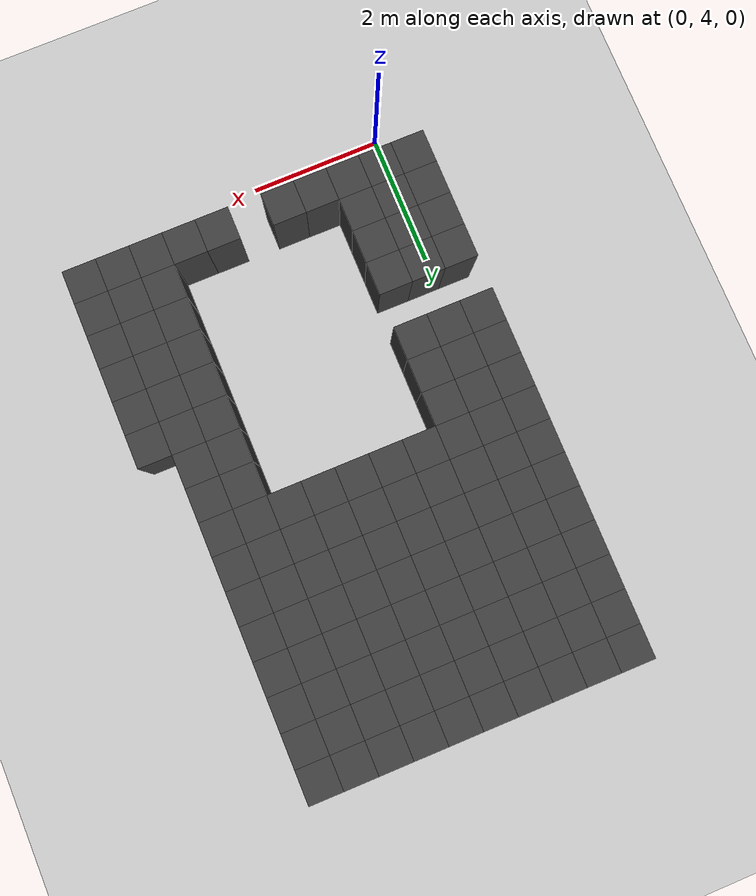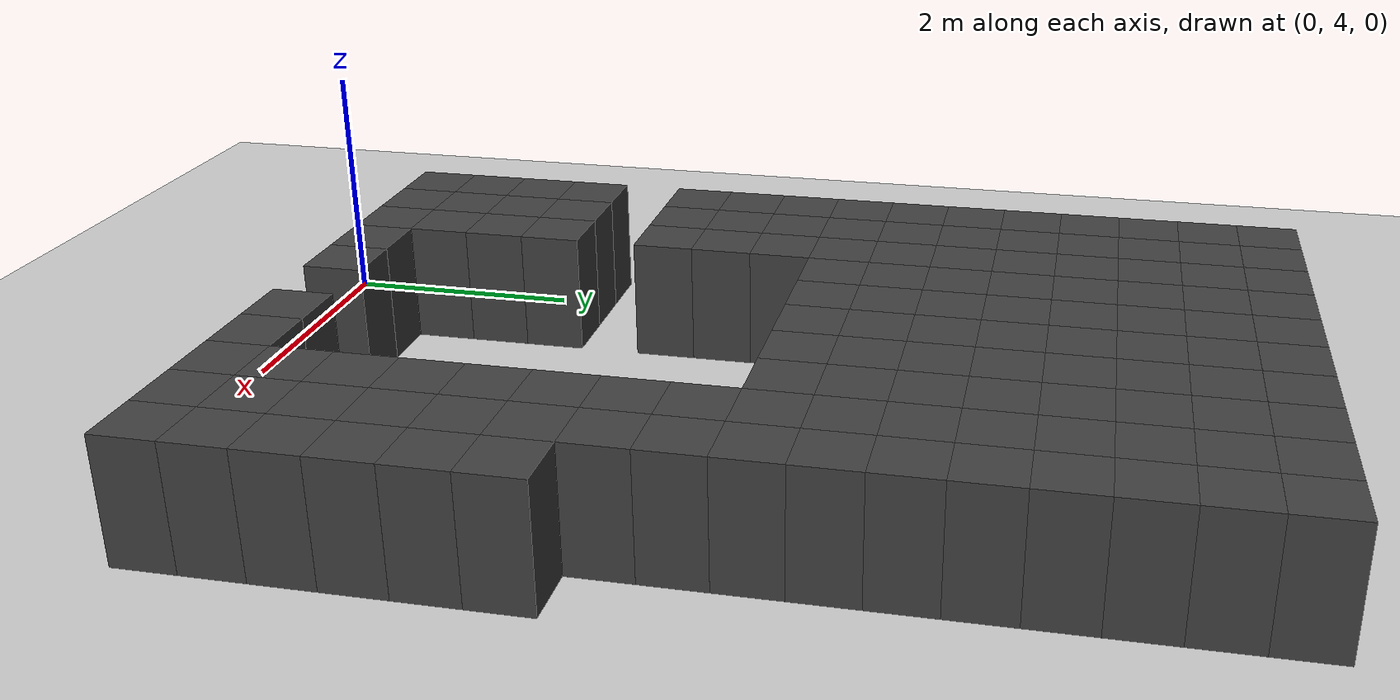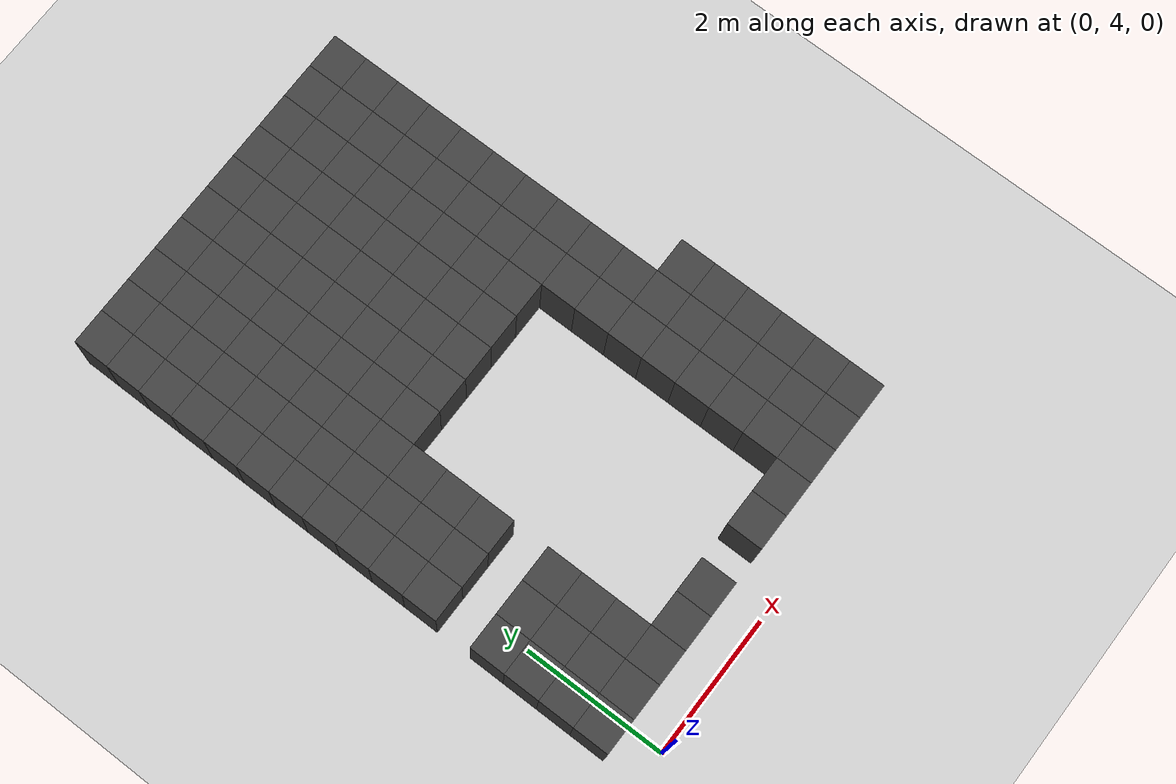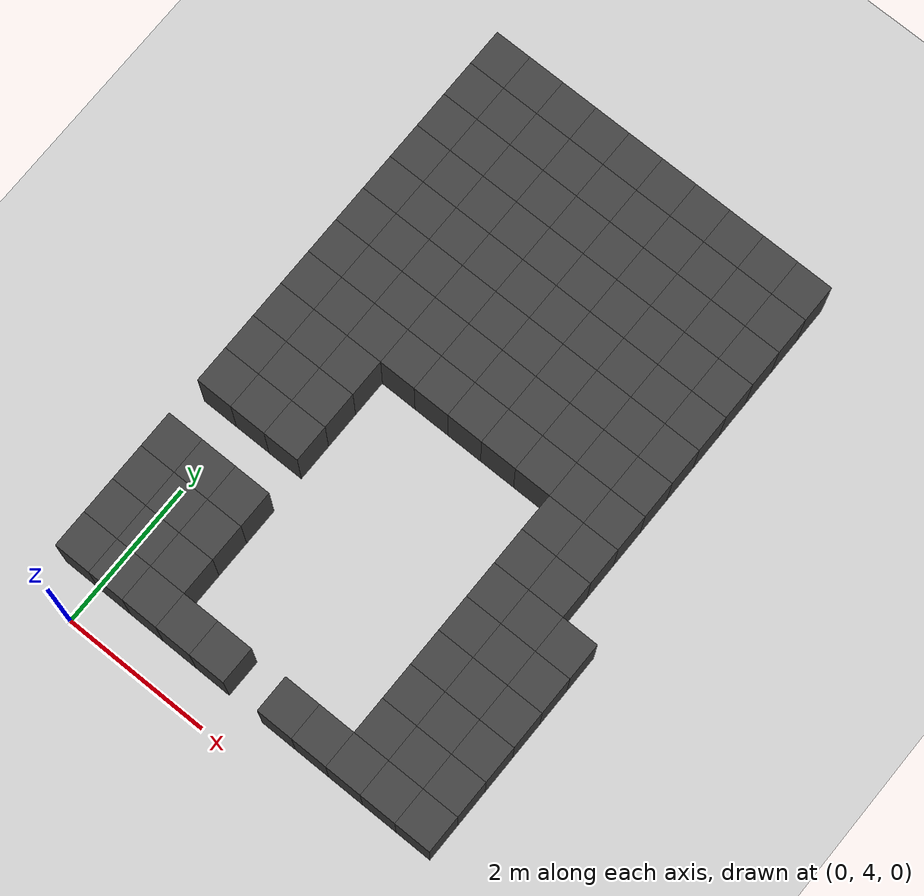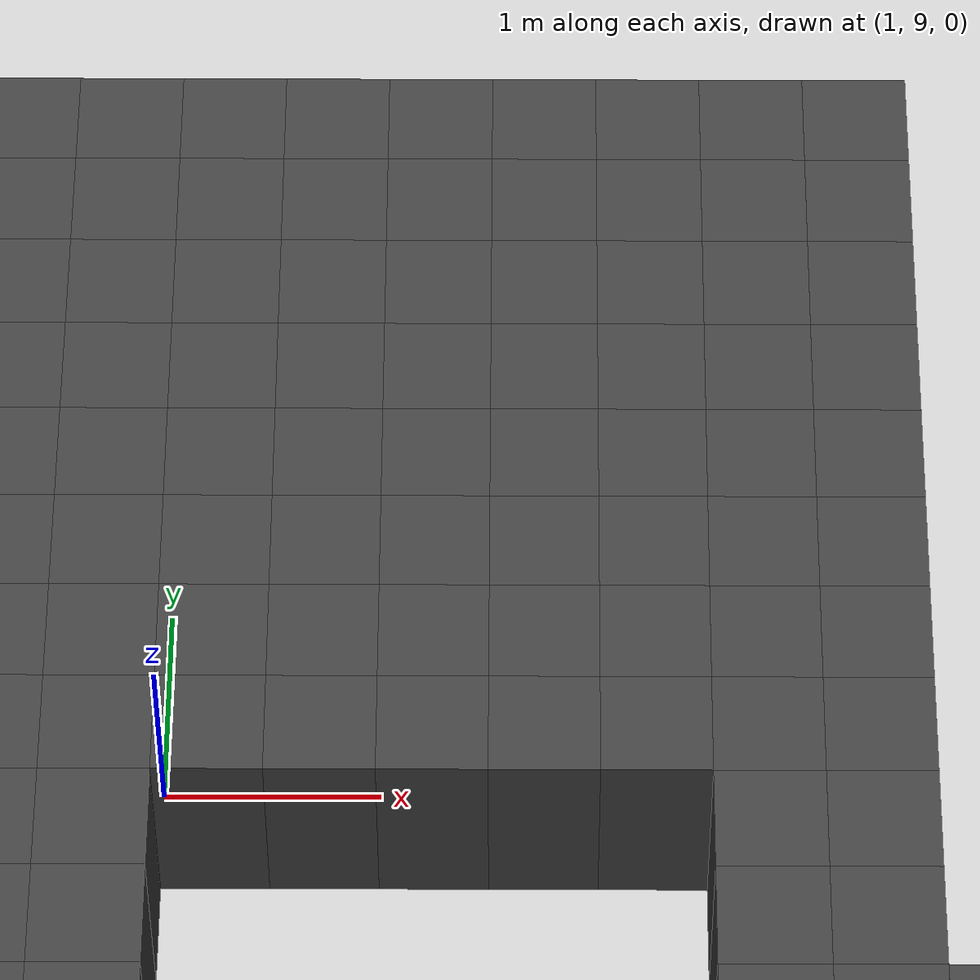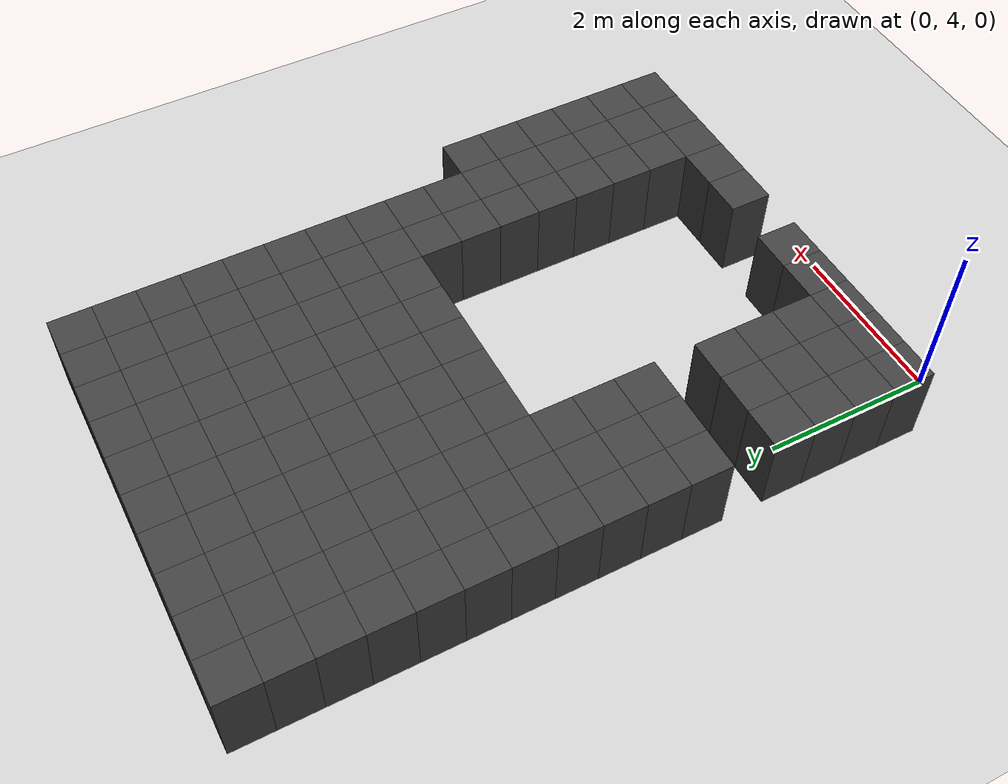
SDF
<sdf version="1.7">
 <world name="map_11672">
  <model name="ground_plane">
   <static>true</static>
   <link name="link">
    <collision name="collision">
     <geometry><plane><normal>0 0 1</normal><size>200 200</size></plane></geometry>
    </collision>
    <visual name="visual">
     <geometry><plane><normal>0 0 1</normal><size>200 200</size></plane></geometry>
     <material><ambient>0.8 0.8 0.8 1</ambient><diffuse>0.8 0.8 0.8 1</diffuse></material>
    </visual>
   </link>
  </model>
  <model name="maze_environment">
   <static>true</static>
   <link name="wall_24">
    <pose>-0.250 12.250 0.500 0 0 0</pose>
    <collision name="col"><geometry><box><size>0.5 0.5 1.0</size></box></geometry></collision>
    <visual name="vis">
     <geometry><box><size>0.5 0.5 1.0</size></box></geometry>
     <material><ambient>0.15 0.15 0.15 1</ambient><diffuse>0.25 0.25 0.25 1</diffuse></material>
    </visual>
   </link>
   <link name="wall_25">
    <pose>0.250 12.250 0.500 0 0 0</pose>
    <collision name="col"><geometry><box><size>0.5 0.5 1.0</size></box></geometry></collision>
    <visual name="vis">
     <geometry><box><size>0.5 0.5 1.0</size></box></geometry>
     <material><ambient>0.15 0.15 0.15 1</ambient><diffuse>0.25 0.25 0.25 1</diffuse></material>
    </visual>
   </link>
   <link name="wall_26">
    <pose>0.750 12.250 0.500 0 0 0</pose>
    <collision name="col"><geometry><box><size>0.5 0.5 1.0</size></box></geometry></collision>
    <visual name="vis">
     <geometry><box><size>0.5 0.5 1.0</size></box></geometry>
     <material><ambient>0.15 0.15 0.15 1</ambient><diffuse>0.25 0.25 0.25 1</diffuse></material>
    </visual>
   </link>
   <link name="wall_27">
    <pose>1.250 12.250 0.500 0 0 0</pose>
    <collision name="col"><geometry><box><size>0.5 0.5 1.0</size></box></geometry></collision>
    <visual name="vis">
     <geometry><box><size>0.5 0.5 1.0</size></box></geometry>
     <material><ambient>0.15 0.15 0.15 1</ambient><diffuse>0.25 0.25 0.25 1</diffuse></material>
    </visual>
   </link>
   <link name="wall_28">
    <pose>1.750 12.250 0.500 0 0 0</pose>
    <collision name="col"><geometry><box><size>0.5 0.5 1.0</size></box></geometry></collision>
    <visual name="vis">
     <geometry><box><size>0.5 0.5 1.0</size></box></geometry>
     <material><ambient>0.15 0.15 0.15 1</ambient><diffuse>0.25 0.25 0.25 1</diffuse></material>
    </visual>
   </link>
   <link name="wall_29">
    <pose>2.250 12.250 0.500 0 0 0</pose>
    <collision name="col"><geometry><box><size>0.5 0.5 1.0</size></box></geometry></collision>
    <visual name="vis">
     <geometry><box><size>0.5 0.5 1.0</size></box></geometry>
     <material><ambient>0.15 0.15 0.15 1</ambient><diffuse>0.25 0.25 0.25 1</diffuse></material>
    </visual>
   </link>
   <link name="wall_30">
    <pose>2.750 12.250 0.500 0 0 0</pose>
    <collision name="col"><geometry><box><size>0.5 0.5 1.0</size></box></geometry></collision>
    <visual name="vis">
     <geometry><box><size>0.5 0.5 1.0</size></box></geometry>
     <material><ambient>0.15 0.15 0.15 1</ambient><diffuse>0.25 0.25 0.25 1</diffuse></material>
    </visual>
   </link>
   <link name="wall_31">
    <pose>3.250 12.250 0.500 0 0 0</pose>
    <collision name="col"><geometry><box><size>0.5 0.5 1.0</size></box></geometry></collision>
    <visual name="vis">
     <geometry><box><size>0.5 0.5 1.0</size></box></geometry>
     <material><ambient>0.15 0.15 0.15 1</ambient><diffuse>0.25 0.25 0.25 1</diffuse></material>
    </visual>
   </link>
   <link name="wall_32">
    <pose>3.750 12.250 0.500 0 0 0</pose>
    <collision name="col"><geometry><box><size>0.5 0.5 1.0</size></box></geometry></collision>
    <visual name="vis">
     <geometry><box><size>0.5 0.5 1.0</size></box></geometry>
     <material><ambient>0.15 0.15 0.15 1</ambient><diffuse>0.25 0.25 0.25 1</diffuse></material>
    </visual>
   </link>
   <link name="wall_33">
    <pose>4.250 12.250 0.500 0 0 0</pose>
    <collision name="col"><geometry><box><size>0.5 0.5 1.0</size></box></geometry></collision>
    <visual name="vis">
     <geometry><box><size>0.5 0.5 1.0</size></box></geometry>
     <material><ambient>0.15 0.15 0.15 1</ambient><diffuse>0.25 0.25 0.25 1</diffuse></material>
    </visual>
   </link>
   <link name="wall_71">
    <pose>-0.250 11.750 0.500 0 0 0</pose>
    <collision name="col"><geometry><box><size>0.5 0.5 1.0</size></box></geometry></collision>
    <visual name="vis">
     <geometry><box><size>0.5 0.5 1.0</size></box></geometry>
     <material><ambient>0.15 0.15 0.15 1</ambient><diffuse>0.25 0.25 0.25 1</diffuse></material>
    </visual>
   </link>
   <link name="wall_72">
    <pose>0.250 11.750 0.500 0 0 0</pose>
    <collision name="col"><geometry><box><size>0.5 0.5 1.0</size></box></geometry></collision>
    <visual name="vis">
     <geometry><box><size>0.5 0.5 1.0</size></box></geometry>
     <material><ambient>0.15 0.15 0.15 1</ambient><diffuse>0.25 0.25 0.25 1</diffuse></material>
    </visual>
   </link>
   <link name="wall_73">
    <pose>0.750 11.750 0.500 0 0 0</pose>
    <collision name="col"><geometry><box><size>0.5 0.5 1.0</size></box></geometry></collision>
    <visual name="vis">
     <geometry><box><size>0.5 0.5 1.0</size></box></geometry>
     <material><ambient>0.15 0.15 0.15 1</ambient><diffuse>0.25 0.25 0.25 1</diffuse></material>
    </visual>
   </link>
   <link name="wall_74">
    <pose>1.250 11.750 0.500 0 0 0</pose>
    <collision name="col"><geometry><box><size>0.5 0.5 1.0</size></box></geometry></collision>
    <visual name="vis">
     <geometry><box><size>0.5 0.5 1.0</size></box></geometry>
     <material><ambient>0.15 0.15 0.15 1</ambient><diffuse>0.25 0.25 0.25 1</diffuse></material>
    </visual>
   </link>
   <link name="wall_75">
    <pose>1.750 11.750 0.500 0 0 0</pose>
    <collision name="col"><geometry><box><size>0.5 0.5 1.0</size></box></geometry></collision>
    <visual name="vis">
     <geometry><box><size>0.5 0.5 1.0</size></box></geometry>
     <material><ambient>0.15 0.15 0.15 1</ambient><diffuse>0.25 0.25 0.25 1</diffuse></material>
    </visual>
   </link>
   <link name="wall_76">
    <pose>2.250 11.750 0.500 0 0 0</pose>
    <collision name="col"><geometry><box><size>0.5 0.5 1.0</size></box></geometry></collision>
    <visual name="vis">
     <geometry><box><size>0.5 0.5 1.0</size></box></geometry>
     <material><ambient>0.15 0.15 0.15 1</ambient><diffuse>0.25 0.25 0.25 1</diffuse></material>
    </visual>
   </link>
   <link name="wall_77">
    <pose>2.750 11.750 0.500 0 0 0</pose>
    <collision name="col"><geometry><box><size>0.5 0.5 1.0</size></box></geometry></collision>
    <visual name="vis">
     <geometry><box><size>0.5 0.5 1.0</size></box></geometry>
     <material><ambient>0.15 0.15 0.15 1</ambient><diffuse>0.25 0.25 0.25 1</diffuse></material>
    </visual>
   </link>
   <link name="wall_78">
    <pose>3.250 11.750 0.500 0 0 0</pose>
    <collision name="col"><geometry><box><size>0.5 0.5 1.0</size></box></geometry></collision>
    <visual name="vis">
     <geometry><box><size>0.5 0.5 1.0</size></box></geometry>
     <material><ambient>0.15 0.15 0.15 1</ambient><diffuse>0.25 0.25 0.25 1</diffuse></material>
    </visual>
   </link>
   <link name="wall_79">
    <pose>3.750 11.750 0.500 0 0 0</pose>
    <collision name="col"><geometry><box><size>0.5 0.5 1.0</size></box></geometry></collision>
    <visual name="vis">
     <geometry><box><size>0.5 0.5 1.0</size></box></geometry>
     <material><ambient>0.15 0.15 0.15 1</ambient><diffuse>0.25 0.25 0.25 1</diffuse></material>
    </visual>
   </link>
   <link name="wall_80">
    <pose>4.250 11.750 0.500 0 0 0</pose>
    <collision name="col"><geometry><box><size>0.5 0.5 1.0</size></box></geometry></collision>
    <visual name="vis">
     <geometry><box><size>0.5 0.5 1.0</size></box></geometry>
     <material><ambient>0.15 0.15 0.15 1</ambient><diffuse>0.25 0.25 0.25 1</diffuse></material>
    </visual>
   </link>
   <link name="wall_118">
    <pose>-0.250 11.250 0.500 0 0 0</pose>
    <collision name="col"><geometry><box><size>0.5 0.5 1.0</size></box></geometry></collision>
    <visual name="vis">
     <geometry><box><size>0.5 0.5 1.0</size></box></geometry>
     <material><ambient>0.15 0.15 0.15 1</ambient><diffuse>0.25 0.25 0.25 1</diffuse></material>
    </visual>
   </link>
   <link name="wall_119">
    <pose>0.250 11.250 0.500 0 0 0</pose>
    <collision name="col"><geometry><box><size>0.5 0.5 1.0</size></box></geometry></collision>
    <visual name="vis">
     <geometry><box><size>0.5 0.5 1.0</size></box></geometry>
     <material><ambient>0.15 0.15 0.15 1</ambient><diffuse>0.25 0.25 0.25 1</diffuse></material>
    </visual>
   </link>
   <link name="wall_120">
    <pose>0.750 11.250 0.500 0 0 0</pose>
    <collision name="col"><geometry><box><size>0.5 0.5 1.0</size></box></geometry></collision>
    <visual name="vis">
     <geometry><box><size>0.5 0.5 1.0</size></box></geometry>
     <material><ambient>0.15 0.15 0.15 1</ambient><diffuse>0.25 0.25 0.25 1</diffuse></material>
    </visual>
   </link>
   <link name="wall_121">
    <pose>1.250 11.250 0.500 0 0 0</pose>
    <collision name="col"><geometry><box><size>0.5 0.5 1.0</size></box></geometry></collision>
    <visual name="vis">
     <geometry><box><size>0.5 0.5 1.0</size></box></geometry>
     <material><ambient>0.15 0.15 0.15 1</ambient><diffuse>0.25 0.25 0.25 1</diffuse></material>
    </visual>
   </link>
   <link name="wall_122">
    <pose>1.750 11.250 0.500 0 0 0</pose>
    <collision name="col"><geometry><box><size>0.5 0.5 1.0</size></box></geometry></collision>
    <visual name="vis">
     <geometry><box><size>0.5 0.5 1.0</size></box></geometry>
     <material><ambient>0.15 0.15 0.15 1</ambient><diffuse>0.25 0.25 0.25 1</diffuse></material>
    </visual>
   </link>
   <link name="wall_123">
    <pose>2.250 11.250 0.500 0 0 0</pose>
    <collision name="col"><geometry><box><size>0.5 0.5 1.0</size></box></geometry></collision>
    <visual name="vis">
     <geometry><box><size>0.5 0.5 1.0</size></box></geometry>
     <material><ambient>0.15 0.15 0.15 1</ambient><diffuse>0.25 0.25 0.25 1</diffuse></material>
    </visual>
   </link>
   <link name="wall_124">
    <pose>2.750 11.250 0.500 0 0 0</pose>
    <collision name="col"><geometry><box><size>0.5 0.5 1.0</size></box></geometry></collision>
    <visual name="vis">
     <geometry><box><size>0.5 0.5 1.0</size></box></geometry>
     <material><ambient>0.15 0.15 0.15 1</ambient><diffuse>0.25 0.25 0.25 1</diffuse></material>
    </visual>
   </link>
   <link name="wall_125">
    <pose>3.250 11.250 0.500 0 0 0</pose>
    <collision name="col"><geometry><box><size>0.5 0.5 1.0</size></box></geometry></collision>
    <visual name="vis">
     <geometry><box><size>0.5 0.5 1.0</size></box></geometry>
     <material><ambient>0.15 0.15 0.15 1</ambient><diffuse>0.25 0.25 0.25 1</diffuse></material>
    </visual>
   </link>
   <link name="wall_126">
    <pose>3.750 11.250 0.500 0 0 0</pose>
    <collision name="col"><geometry><box><size>0.5 0.5 1.0</size></box></geometry></collision>
    <visual name="vis">
     <geometry><box><size>0.5 0.5 1.0</size></box></geometry>
     <material><ambient>0.15 0.15 0.15 1</ambient><diffuse>0.25 0.25 0.25 1</diffuse></material>
    </visual>
   </link>
   <link name="wall_127">
    <pose>4.250 11.250 0.500 0 0 0</pose>
    <collision name="col"><geometry><box><size>0.5 0.5 1.0</size></box></geometry></collision>
    <visual name="vis">
     <geometry><box><size>0.5 0.5 1.0</size></box></geometry>
     <material><ambient>0.15 0.15 0.15 1</ambient><diffuse>0.25 0.25 0.25 1</diffuse></material>
    </visual>
   </link>
   <link name="wall_165">
    <pose>-0.250 10.750 0.500 0 0 0</pose>
    <collision name="col"><geometry><box><size>0.5 0.5 1.0</size></box></geometry></collision>
    <visual name="vis">
     <geometry><box><size>0.5 0.5 1.0</size></box></geometry>
     <material><ambient>0.15 0.15 0.15 1</ambient><diffuse>0.25 0.25 0.25 1</diffuse></material>
    </visual>
   </link>
   <link name="wall_166">
    <pose>0.250 10.750 0.500 0 0 0</pose>
    <collision name="col"><geometry><box><size>0.5 0.5 1.0</size></box></geometry></collision>
    <visual name="vis">
     <geometry><box><size>0.5 0.5 1.0</size></box></geometry>
     <material><ambient>0.15 0.15 0.15 1</ambient><diffuse>0.25 0.25 0.25 1</diffuse></material>
    </visual>
   </link>
   <link name="wall_167">
    <pose>0.750 10.750 0.500 0 0 0</pose>
    <collision name="col"><geometry><box><size>0.5 0.5 1.0</size></box></geometry></collision>
    <visual name="vis">
     <geometry><box><size>0.5 0.5 1.0</size></box></geometry>
     <material><ambient>0.15 0.15 0.15 1</ambient><diffuse>0.25 0.25 0.25 1</diffuse></material>
    </visual>
   </link>
   <link name="wall_168">
    <pose>1.250 10.750 0.500 0 0 0</pose>
    <collision name="col"><geometry><box><size>0.5 0.5 1.0</size></box></geometry></collision>
    <visual name="vis">
     <geometry><box><size>0.5 0.5 1.0</size></box></geometry>
     <material><ambient>0.15 0.15 0.15 1</ambient><diffuse>0.25 0.25 0.25 1</diffuse></material>
    </visual>
   </link>
   <link name="wall_169">
    <pose>1.750 10.750 0.500 0 0 0</pose>
    <collision name="col"><geometry><box><size>0.5 0.5 1.0</size></box></geometry></collision>
    <visual name="vis">
     <geometry><box><size>0.5 0.5 1.0</size></box></geometry>
     <material><ambient>0.15 0.15 0.15 1</ambient><diffuse>0.25 0.25 0.25 1</diffuse></material>
    </visual>
   </link>
   <link name="wall_170">
    <pose>2.250 10.750 0.500 0 0 0</pose>
    <collision name="col"><geometry><box><size>0.5 0.5 1.0</size></box></geometry></collision>
    <visual name="vis">
     <geometry><box><size>0.5 0.5 1.0</size></box></geometry>
     <material><ambient>0.15 0.15 0.15 1</ambient><diffuse>0.25 0.25 0.25 1</diffuse></material>
    </visual>
   </link>
   <link name="wall_171">
    <pose>2.750 10.750 0.500 0 0 0</pose>
    <collision name="col"><geometry><box><size>0.5 0.5 1.0</size></box></geometry></collision>
    <visual name="vis">
     <geometry><box><size>0.5 0.5 1.0</size></box></geometry>
     <material><ambient>0.15 0.15 0.15 1</ambient><diffuse>0.25 0.25 0.25 1</diffuse></material>
    </visual>
   </link>
   <link name="wall_172">
    <pose>3.250 10.750 0.500 0 0 0</pose>
    <collision name="col"><geometry><box><size>0.5 0.5 1.0</size></box></geometry></collision>
    <visual name="vis">
     <geometry><box><size>0.5 0.5 1.0</size></box></geometry>
     <material><ambient>0.15 0.15 0.15 1</ambient><diffuse>0.25 0.25 0.25 1</diffuse></material>
    </visual>
   </link>
   <link name="wall_173">
    <pose>3.750 10.750 0.500 0 0 0</pose>
    <collision name="col"><geometry><box><size>0.5 0.5 1.0</size></box></geometry></collision>
    <visual name="vis">
     <geometry><box><size>0.5 0.5 1.0</size></box></geometry>
     <material><ambient>0.15 0.15 0.15 1</ambient><diffuse>0.25 0.25 0.25 1</diffuse></material>
    </visual>
   </link>
   <link name="wall_174">
    <pose>4.250 10.750 0.500 0 0 0</pose>
    <collision name="col"><geometry><box><size>0.5 0.5 1.0</size></box></geometry></collision>
    <visual name="vis">
     <geometry><box><size>0.5 0.5 1.0</size></box></geometry>
     <material><ambient>0.15 0.15 0.15 1</ambient><diffuse>0.25 0.25 0.25 1</diffuse></material>
    </visual>
   </link>
   <link name="wall_214">
    <pose>-0.250 10.250 0.500 0 0 0</pose>
    <collision name="col"><geometry><box><size>0.5 0.5 1.0</size></box></geometry></collision>
    <visual name="vis">
     <geometry><box><size>0.5 0.5 1.0</size></box></geometry>
     <material><ambient>0.15 0.15 0.15 1</ambient><diffuse>0.25 0.25 0.25 1</diffuse></material>
    </visual>
   </link>
   <link name="wall_215">
    <pose>0.250 10.250 0.500 0 0 0</pose>
    <collision name="col"><geometry><box><size>0.5 0.5 1.0</size></box></geometry></collision>
    <visual name="vis">
     <geometry><box><size>0.5 0.5 1.0</size></box></geometry>
     <material><ambient>0.15 0.15 0.15 1</ambient><diffuse>0.25 0.25 0.25 1</diffuse></material>
    </visual>
   </link>
   <link name="wall_216">
    <pose>0.750 10.250 0.500 0 0 0</pose>
    <collision name="col"><geometry><box><size>0.5 0.5 1.0</size></box></geometry></collision>
    <visual name="vis">
     <geometry><box><size>0.5 0.5 1.0</size></box></geometry>
     <material><ambient>0.15 0.15 0.15 1</ambient><diffuse>0.25 0.25 0.25 1</diffuse></material>
    </visual>
   </link>
   <link name="wall_217">
    <pose>1.250 10.250 0.500 0 0 0</pose>
    <collision name="col"><geometry><box><size>0.5 0.5 1.0</size></box></geometry></collision>
    <visual name="vis">
     <geometry><box><size>0.5 0.5 1.0</size></box></geometry>
     <material><ambient>0.15 0.15 0.15 1</ambient><diffuse>0.25 0.25 0.25 1</diffuse></material>
    </visual>
   </link>
   <link name="wall_218">
    <pose>1.750 10.250 0.500 0 0 0</pose>
    <collision name="col"><geometry><box><size>0.5 0.5 1.0</size></box></geometry></collision>
    <visual name="vis">
     <geometry><box><size>0.5 0.5 1.0</size></box></geometry>
     <material><ambient>0.15 0.15 0.15 1</ambient><diffuse>0.25 0.25 0.25 1</diffuse></material>
    </visual>
   </link>
   <link name="wall_219">
    <pose>2.250 10.250 0.500 0 0 0</pose>
    <collision name="col"><geometry><box><size>0.5 0.5 1.0</size></box></geometry></collision>
    <visual name="vis">
     <geometry><box><size>0.5 0.5 1.0</size></box></geometry>
     <material><ambient>0.15 0.15 0.15 1</ambient><diffuse>0.25 0.25 0.25 1</diffuse></material>
    </visual>
   </link>
   <link name="wall_220">
    <pose>2.750 10.250 0.500 0 0 0</pose>
    <collision name="col"><geometry><box><size>0.5 0.5 1.0</size></box></geometry></collision>
    <visual name="vis">
     <geometry><box><size>0.5 0.5 1.0</size></box></geometry>
     <material><ambient>0.15 0.15 0.15 1</ambient><diffuse>0.25 0.25 0.25 1</diffuse></material>
    </visual>
   </link>
   <link name="wall_221">
    <pose>3.250 10.250 0.500 0 0 0</pose>
    <collision name="col"><geometry><box><size>0.5 0.5 1.0</size></box></geometry></collision>
    <visual name="vis">
     <geometry><box><size>0.5 0.5 1.0</size></box></geometry>
     <material><ambient>0.15 0.15 0.15 1</ambient><diffuse>0.25 0.25 0.25 1</diffuse></material>
    </visual>
   </link>
   <link name="wall_222">
    <pose>3.750 10.250 0.500 0 0 0</pose>
    <collision name="col"><geometry><box><size>0.5 0.5 1.0</size></box></geometry></collision>
    <visual name="vis">
     <geometry><box><size>0.5 0.5 1.0</size></box></geometry>
     <material><ambient>0.15 0.15 0.15 1</ambient><diffuse>0.25 0.25 0.25 1</diffuse></material>
    </visual>
   </link>
   <link name="wall_223">
    <pose>4.250 10.250 0.500 0 0 0</pose>
    <collision name="col"><geometry><box><size>0.5 0.5 1.0</size></box></geometry></collision>
    <visual name="vis">
     <geometry><box><size>0.5 0.5 1.0</size></box></geometry>
     <material><ambient>0.15 0.15 0.15 1</ambient><diffuse>0.25 0.25 0.25 1</diffuse></material>
    </visual>
   </link>
   <link name="wall_263">
    <pose>-0.250 9.750 0.500 0 0 0</pose>
    <collision name="col"><geometry><box><size>0.5 0.5 1.0</size></box></geometry></collision>
    <visual name="vis">
     <geometry><box><size>0.5 0.5 1.0</size></box></geometry>
     <material><ambient>0.15 0.15 0.15 1</ambient><diffuse>0.25 0.25 0.25 1</diffuse></material>
    </visual>
   </link>
   <link name="wall_264">
    <pose>0.250 9.750 0.500 0 0 0</pose>
    <collision name="col"><geometry><box><size>0.5 0.5 1.0</size></box></geometry></collision>
    <visual name="vis">
     <geometry><box><size>0.5 0.5 1.0</size></box></geometry>
     <material><ambient>0.15 0.15 0.15 1</ambient><diffuse>0.25 0.25 0.25 1</diffuse></material>
    </visual>
   </link>
   <link name="wall_265">
    <pose>0.750 9.750 0.500 0 0 0</pose>
    <collision name="col"><geometry><box><size>0.5 0.5 1.0</size></box></geometry></collision>
    <visual name="vis">
     <geometry><box><size>0.5 0.5 1.0</size></box></geometry>
     <material><ambient>0.15 0.15 0.15 1</ambient><diffuse>0.25 0.25 0.25 1</diffuse></material>
    </visual>
   </link>
   <link name="wall_266">
    <pose>1.250 9.750 0.500 0 0 0</pose>
    <collision name="col"><geometry><box><size>0.5 0.5 1.0</size></box></geometry></collision>
    <visual name="vis">
     <geometry><box><size>0.5 0.5 1.0</size></box></geometry>
     <material><ambient>0.15 0.15 0.15 1</ambient><diffuse>0.25 0.25 0.25 1</diffuse></material>
    </visual>
   </link>
   <link name="wall_267">
    <pose>1.750 9.750 0.500 0 0 0</pose>
    <collision name="col"><geometry><box><size>0.5 0.5 1.0</size></box></geometry></collision>
    <visual name="vis">
     <geometry><box><size>0.5 0.5 1.0</size></box></geometry>
     <material><ambient>0.15 0.15 0.15 1</ambient><diffuse>0.25 0.25 0.25 1</diffuse></material>
    </visual>
   </link>
   <link name="wall_268">
    <pose>2.250 9.750 0.500 0 0 0</pose>
    <collision name="col"><geometry><box><size>0.5 0.5 1.0</size></box></geometry></collision>
    <visual name="vis">
     <geometry><box><size>0.5 0.5 1.0</size></box></geometry>
     <material><ambient>0.15 0.15 0.15 1</ambient><diffuse>0.25 0.25 0.25 1</diffuse></material>
    </visual>
   </link>
   <link name="wall_269">
    <pose>2.750 9.750 0.500 0 0 0</pose>
    <collision name="col"><geometry><box><size>0.5 0.5 1.0</size></box></geometry></collision>
    <visual name="vis">
     <geometry><box><size>0.5 0.5 1.0</size></box></geometry>
     <material><ambient>0.15 0.15 0.15 1</ambient><diffuse>0.25 0.25 0.25 1</diffuse></material>
    </visual>
   </link>
   <link name="wall_270">
    <pose>3.250 9.750 0.500 0 0 0</pose>
    <collision name="col"><geometry><box><size>0.5 0.5 1.0</size></box></geometry></collision>
    <visual name="vis">
     <geometry><box><size>0.5 0.5 1.0</size></box></geometry>
     <material><ambient>0.15 0.15 0.15 1</ambient><diffuse>0.25 0.25 0.25 1</diffuse></material>
    </visual>
   </link>
   <link name="wall_271">
    <pose>3.750 9.750 0.500 0 0 0</pose>
    <collision name="col"><geometry><box><size>0.5 0.5 1.0</size></box></geometry></collision>
    <visual name="vis">
     <geometry><box><size>0.5 0.5 1.0</size></box></geometry>
     <material><ambient>0.15 0.15 0.15 1</ambient><diffuse>0.25 0.25 0.25 1</diffuse></material>
    </visual>
   </link>
   <link name="wall_272">
    <pose>4.250 9.750 0.500 0 0 0</pose>
    <collision name="col"><geometry><box><size>0.5 0.5 1.0</size></box></geometry></collision>
    <visual name="vis">
     <geometry><box><size>0.5 0.5 1.0</size></box></geometry>
     <material><ambient>0.15 0.15 0.15 1</ambient><diffuse>0.25 0.25 0.25 1</diffuse></material>
    </visual>
   </link>
   <link name="wall_312">
    <pose>-0.250 9.250 0.500 0 0 0</pose>
    <collision name="col"><geometry><box><size>0.5 0.5 1.0</size></box></geometry></collision>
    <visual name="vis">
     <geometry><box><size>0.5 0.5 1.0</size></box></geometry>
     <material><ambient>0.15 0.15 0.15 1</ambient><diffuse>0.25 0.25 0.25 1</diffuse></material>
    </visual>
   </link>
   <link name="wall_313">
    <pose>0.250 9.250 0.500 0 0 0</pose>
    <collision name="col"><geometry><box><size>0.5 0.5 1.0</size></box></geometry></collision>
    <visual name="vis">
     <geometry><box><size>0.5 0.5 1.0</size></box></geometry>
     <material><ambient>0.15 0.15 0.15 1</ambient><diffuse>0.25 0.25 0.25 1</diffuse></material>
    </visual>
   </link>
   <link name="wall_314">
    <pose>0.750 9.250 0.500 0 0 0</pose>
    <collision name="col"><geometry><box><size>0.5 0.5 1.0</size></box></geometry></collision>
    <visual name="vis">
     <geometry><box><size>0.5 0.5 1.0</size></box></geometry>
     <material><ambient>0.15 0.15 0.15 1</ambient><diffuse>0.25 0.25 0.25 1</diffuse></material>
    </visual>
   </link>
   <link name="wall_315">
    <pose>1.250 9.250 0.500 0 0 0</pose>
    <collision name="col"><geometry><box><size>0.5 0.5 1.0</size></box></geometry></collision>
    <visual name="vis">
     <geometry><box><size>0.5 0.5 1.0</size></box></geometry>
     <material><ambient>0.15 0.15 0.15 1</ambient><diffuse>0.25 0.25 0.25 1</diffuse></material>
    </visual>
   </link>
   <link name="wall_316">
    <pose>1.750 9.250 0.500 0 0 0</pose>
    <collision name="col"><geometry><box><size>0.5 0.5 1.0</size></box></geometry></collision>
    <visual name="vis">
     <geometry><box><size>0.5 0.5 1.0</size></box></geometry>
     <material><ambient>0.15 0.15 0.15 1</ambient><diffuse>0.25 0.25 0.25 1</diffuse></material>
    </visual>
   </link>
   <link name="wall_317">
    <pose>2.250 9.250 0.500 0 0 0</pose>
    <collision name="col"><geometry><box><size>0.5 0.5 1.0</size></box></geometry></collision>
    <visual name="vis">
     <geometry><box><size>0.5 0.5 1.0</size></box></geometry>
     <material><ambient>0.15 0.15 0.15 1</ambient><diffuse>0.25 0.25 0.25 1</diffuse></material>
    </visual>
   </link>
   <link name="wall_318">
    <pose>2.750 9.250 0.500 0 0 0</pose>
    <collision name="col"><geometry><box><size>0.5 0.5 1.0</size></box></geometry></collision>
    <visual name="vis">
     <geometry><box><size>0.5 0.5 1.0</size></box></geometry>
     <material><ambient>0.15 0.15 0.15 1</ambient><diffuse>0.25 0.25 0.25 1</diffuse></material>
    </visual>
   </link>
   <link name="wall_319">
    <pose>3.250 9.250 0.500 0 0 0</pose>
    <collision name="col"><geometry><box><size>0.5 0.5 1.0</size></box></geometry></collision>
    <visual name="vis">
     <geometry><box><size>0.5 0.5 1.0</size></box></geometry>
     <material><ambient>0.15 0.15 0.15 1</ambient><diffuse>0.25 0.25 0.25 1</diffuse></material>
    </visual>
   </link>
   <link name="wall_320">
    <pose>3.750 9.250 0.500 0 0 0</pose>
    <collision name="col"><geometry><box><size>0.5 0.5 1.0</size></box></geometry></collision>
    <visual name="vis">
     <geometry><box><size>0.5 0.5 1.0</size></box></geometry>
     <material><ambient>0.15 0.15 0.15 1</ambient><diffuse>0.25 0.25 0.25 1</diffuse></material>
    </visual>
   </link>
   <link name="wall_321">
    <pose>4.250 9.250 0.500 0 0 0</pose>
    <collision name="col"><geometry><box><size>0.5 0.5 1.0</size></box></geometry></collision>
    <visual name="vis">
     <geometry><box><size>0.5 0.5 1.0</size></box></geometry>
     <material><ambient>0.15 0.15 0.15 1</ambient><diffuse>0.25 0.25 0.25 1</diffuse></material>
    </visual>
   </link>
   <link name="wall_354">
    <pose>-0.250 8.750 0.500 0 0 0</pose>
    <collision name="col"><geometry><box><size>0.5 0.5 1.0</size></box></geometry></collision>
    <visual name="vis">
     <geometry><box><size>0.5 0.5 1.0</size></box></geometry>
     <material><ambient>0.15 0.15 0.15 1</ambient><diffuse>0.25 0.25 0.25 1</diffuse></material>
    </visual>
   </link>
   <link name="wall_355">
    <pose>0.250 8.750 0.500 0 0 0</pose>
    <collision name="col"><geometry><box><size>0.5 0.5 1.0</size></box></geometry></collision>
    <visual name="vis">
     <geometry><box><size>0.5 0.5 1.0</size></box></geometry>
     <material><ambient>0.15 0.15 0.15 1</ambient><diffuse>0.25 0.25 0.25 1</diffuse></material>
    </visual>
   </link>
   <link name="wall_356">
    <pose>0.750 8.750 0.500 0 0 0</pose>
    <collision name="col"><geometry><box><size>0.5 0.5 1.0</size></box></geometry></collision>
    <visual name="vis">
     <geometry><box><size>0.5 0.5 1.0</size></box></geometry>
     <material><ambient>0.15 0.15 0.15 1</ambient><diffuse>0.25 0.25 0.25 1</diffuse></material>
    </visual>
   </link>
   <link name="wall_357">
    <pose>1.250 8.750 0.500 0 0 0</pose>
    <collision name="col"><geometry><box><size>0.5 0.5 1.0</size></box></geometry></collision>
    <visual name="vis">
     <geometry><box><size>0.5 0.5 1.0</size></box></geometry>
     <material><ambient>0.15 0.15 0.15 1</ambient><diffuse>0.25 0.25 0.25 1</diffuse></material>
    </visual>
   </link>
   <link name="wall_358">
    <pose>1.750 8.750 0.500 0 0 0</pose>
    <collision name="col"><geometry><box><size>0.5 0.5 1.0</size></box></geometry></collision>
    <visual name="vis">
     <geometry><box><size>0.5 0.5 1.0</size></box></geometry>
     <material><ambient>0.15 0.15 0.15 1</ambient><diffuse>0.25 0.25 0.25 1</diffuse></material>
    </visual>
   </link>
   <link name="wall_359">
    <pose>2.250 8.750 0.500 0 0 0</pose>
    <collision name="col"><geometry><box><size>0.5 0.5 1.0</size></box></geometry></collision>
    <visual name="vis">
     <geometry><box><size>0.5 0.5 1.0</size></box></geometry>
     <material><ambient>0.15 0.15 0.15 1</ambient><diffuse>0.25 0.25 0.25 1</diffuse></material>
    </visual>
   </link>
   <link name="wall_360">
    <pose>2.750 8.750 0.500 0 0 0</pose>
    <collision name="col"><geometry><box><size>0.5 0.5 1.0</size></box></geometry></collision>
    <visual name="vis">
     <geometry><box><size>0.5 0.5 1.0</size></box></geometry>
     <material><ambient>0.15 0.15 0.15 1</ambient><diffuse>0.25 0.25 0.25 1</diffuse></material>
    </visual>
   </link>
   <link name="wall_361">
    <pose>3.250 8.750 0.500 0 0 0</pose>
    <collision name="col"><geometry><box><size>0.5 0.5 1.0</size></box></geometry></collision>
    <visual name="vis">
     <geometry><box><size>0.5 0.5 1.0</size></box></geometry>
     <material><ambient>0.15 0.15 0.15 1</ambient><diffuse>0.25 0.25 0.25 1</diffuse></material>
    </visual>
   </link>
   <link name="wall_362">
    <pose>3.750 8.750 0.500 0 0 0</pose>
    <collision name="col"><geometry><box><size>0.5 0.5 1.0</size></box></geometry></collision>
    <visual name="vis">
     <geometry><box><size>0.5 0.5 1.0</size></box></geometry>
     <material><ambient>0.15 0.15 0.15 1</ambient><diffuse>0.25 0.25 0.25 1</diffuse></material>
    </visual>
   </link>
   <link name="wall_363">
    <pose>4.250 8.750 0.500 0 0 0</pose>
    <collision name="col"><geometry><box><size>0.5 0.5 1.0</size></box></geometry></collision>
    <visual name="vis">
     <geometry><box><size>0.5 0.5 1.0</size></box></geometry>
     <material><ambient>0.15 0.15 0.15 1</ambient><diffuse>0.25 0.25 0.25 1</diffuse></material>
    </visual>
   </link>
   <link name="wall_396">
    <pose>-0.250 8.250 0.500 0 0 0</pose>
    <collision name="col"><geometry><box><size>0.5 0.5 1.0</size></box></geometry></collision>
    <visual name="vis">
     <geometry><box><size>0.5 0.5 1.0</size></box></geometry>
     <material><ambient>0.15 0.15 0.15 1</ambient><diffuse>0.25 0.25 0.25 1</diffuse></material>
    </visual>
   </link>
   <link name="wall_397">
    <pose>0.250 8.250 0.500 0 0 0</pose>
    <collision name="col"><geometry><box><size>0.5 0.5 1.0</size></box></geometry></collision>
    <visual name="vis">
     <geometry><box><size>0.5 0.5 1.0</size></box></geometry>
     <material><ambient>0.15 0.15 0.15 1</ambient><diffuse>0.25 0.25 0.25 1</diffuse></material>
    </visual>
   </link>
   <link name="wall_398">
    <pose>0.750 8.250 0.500 0 0 0</pose>
    <collision name="col"><geometry><box><size>0.5 0.5 1.0</size></box></geometry></collision>
    <visual name="vis">
     <geometry><box><size>0.5 0.5 1.0</size></box></geometry>
     <material><ambient>0.15 0.15 0.15 1</ambient><diffuse>0.25 0.25 0.25 1</diffuse></material>
    </visual>
   </link>
   <link name="wall_399">
    <pose>3.750 8.250 0.500 0 0 0</pose>
    <collision name="col"><geometry><box><size>0.5 0.5 1.0</size></box></geometry></collision>
    <visual name="vis">
     <geometry><box><size>0.5 0.5 1.0</size></box></geometry>
     <material><ambient>0.15 0.15 0.15 1</ambient><diffuse>0.25 0.25 0.25 1</diffuse></material>
    </visual>
   </link>
   <link name="wall_400">
    <pose>4.250 8.250 0.500 0 0 0</pose>
    <collision name="col"><geometry><box><size>0.5 0.5 1.0</size></box></geometry></collision>
    <visual name="vis">
     <geometry><box><size>0.5 0.5 1.0</size></box></geometry>
     <material><ambient>0.15 0.15 0.15 1</ambient><diffuse>0.25 0.25 0.25 1</diffuse></material>
    </visual>
   </link>
   <link name="wall_426">
    <pose>-0.250 7.750 0.500 0 0 0</pose>
    <collision name="col"><geometry><box><size>0.5 0.5 1.0</size></box></geometry></collision>
    <visual name="vis">
     <geometry><box><size>0.5 0.5 1.0</size></box></geometry>
     <material><ambient>0.15 0.15 0.15 1</ambient><diffuse>0.25 0.25 0.25 1</diffuse></material>
    </visual>
   </link>
   <link name="wall_427">
    <pose>0.250 7.750 0.500 0 0 0</pose>
    <collision name="col"><geometry><box><size>0.5 0.5 1.0</size></box></geometry></collision>
    <visual name="vis">
     <geometry><box><size>0.5 0.5 1.0</size></box></geometry>
     <material><ambient>0.15 0.15 0.15 1</ambient><diffuse>0.25 0.25 0.25 1</diffuse></material>
    </visual>
   </link>
   <link name="wall_428">
    <pose>0.750 7.750 0.500 0 0 0</pose>
    <collision name="col"><geometry><box><size>0.5 0.5 1.0</size></box></geometry></collision>
    <visual name="vis">
     <geometry><box><size>0.5 0.5 1.0</size></box></geometry>
     <material><ambient>0.15 0.15 0.15 1</ambient><diffuse>0.25 0.25 0.25 1</diffuse></material>
    </visual>
   </link>
   <link name="wall_429">
    <pose>3.750 7.750 0.500 0 0 0</pose>
    <collision name="col"><geometry><box><size>0.5 0.5 1.0</size></box></geometry></collision>
    <visual name="vis">
     <geometry><box><size>0.5 0.5 1.0</size></box></geometry>
     <material><ambient>0.15 0.15 0.15 1</ambient><diffuse>0.25 0.25 0.25 1</diffuse></material>
    </visual>
   </link>
   <link name="wall_430">
    <pose>4.250 7.750 0.500 0 0 0</pose>
    <collision name="col"><geometry><box><size>0.5 0.5 1.0</size></box></geometry></collision>
    <visual name="vis">
     <geometry><box><size>0.5 0.5 1.0</size></box></geometry>
     <material><ambient>0.15 0.15 0.15 1</ambient><diffuse>0.25 0.25 0.25 1</diffuse></material>
    </visual>
   </link>
   <link name="wall_455">
    <pose>-0.250 7.250 0.500 0 0 0</pose>
    <collision name="col"><geometry><box><size>0.5 0.5 1.0</size></box></geometry></collision>
    <visual name="vis">
     <geometry><box><size>0.5 0.5 1.0</size></box></geometry>
     <material><ambient>0.15 0.15 0.15 1</ambient><diffuse>0.25 0.25 0.25 1</diffuse></material>
    </visual>
   </link>
   <link name="wall_456">
    <pose>0.250 7.250 0.500 0 0 0</pose>
    <collision name="col"><geometry><box><size>0.5 0.5 1.0</size></box></geometry></collision>
    <visual name="vis">
     <geometry><box><size>0.5 0.5 1.0</size></box></geometry>
     <material><ambient>0.15 0.15 0.15 1</ambient><diffuse>0.25 0.25 0.25 1</diffuse></material>
    </visual>
   </link>
   <link name="wall_457">
    <pose>0.750 7.250 0.500 0 0 0</pose>
    <collision name="col"><geometry><box><size>0.5 0.5 1.0</size></box></geometry></collision>
    <visual name="vis">
     <geometry><box><size>0.5 0.5 1.0</size></box></geometry>
     <material><ambient>0.15 0.15 0.15 1</ambient><diffuse>0.25 0.25 0.25 1</diffuse></material>
    </visual>
   </link>
   <link name="wall_458">
    <pose>3.750 7.250 0.500 0 0 0</pose>
    <collision name="col"><geometry><box><size>0.5 0.5 1.0</size></box></geometry></collision>
    <visual name="vis">
     <geometry><box><size>0.5 0.5 1.0</size></box></geometry>
     <material><ambient>0.15 0.15 0.15 1</ambient><diffuse>0.25 0.25 0.25 1</diffuse></material>
    </visual>
   </link>
   <link name="wall_459">
    <pose>4.250 7.250 0.500 0 0 0</pose>
    <collision name="col"><geometry><box><size>0.5 0.5 1.0</size></box></geometry></collision>
    <visual name="vis">
     <geometry><box><size>0.5 0.5 1.0</size></box></geometry>
     <material><ambient>0.15 0.15 0.15 1</ambient><diffuse>0.25 0.25 0.25 1</diffuse></material>
    </visual>
   </link>
   <link name="wall_460">
    <pose>4.750 7.250 0.500 0 0 0</pose>
    <collision name="col"><geometry><box><size>0.5 0.5 1.0</size></box></geometry></collision>
    <visual name="vis">
     <geometry><box><size>0.5 0.5 1.0</size></box></geometry>
     <material><ambient>0.15 0.15 0.15 1</ambient><diffuse>0.25 0.25 0.25 1</diffuse></material>
    </visual>
   </link>
   <link name="wall_480">
    <pose>3.750 6.750 0.500 0 0 0</pose>
    <collision name="col"><geometry><box><size>0.5 0.5 1.0</size></box></geometry></collision>
    <visual name="vis">
     <geometry><box><size>0.5 0.5 1.0</size></box></geometry>
     <material><ambient>0.15 0.15 0.15 1</ambient><diffuse>0.25 0.25 0.25 1</diffuse></material>
    </visual>
   </link>
   <link name="wall_481">
    <pose>4.250 6.750 0.500 0 0 0</pose>
    <collision name="col"><geometry><box><size>0.5 0.5 1.0</size></box></geometry></collision>
    <visual name="vis">
     <geometry><box><size>0.5 0.5 1.0</size></box></geometry>
     <material><ambient>0.15 0.15 0.15 1</ambient><diffuse>0.25 0.25 0.25 1</diffuse></material>
    </visual>
   </link>
   <link name="wall_482">
    <pose>4.750 6.750 0.500 0 0 0</pose>
    <collision name="col"><geometry><box><size>0.5 0.5 1.0</size></box></geometry></collision>
    <visual name="vis">
     <geometry><box><size>0.5 0.5 1.0</size></box></geometry>
     <material><ambient>0.15 0.15 0.15 1</ambient><diffuse>0.25 0.25 0.25 1</diffuse></material>
    </visual>
   </link>
   <link name="wall_503">
    <pose>-0.250 6.250 0.500 0 0 0</pose>
    <collision name="col"><geometry><box><size>0.5 0.5 1.0</size></box></geometry></collision>
    <visual name="vis">
     <geometry><box><size>0.5 0.5 1.0</size></box></geometry>
     <material><ambient>0.15 0.15 0.15 1</ambient><diffuse>0.25 0.25 0.25 1</diffuse></material>
    </visual>
   </link>
   <link name="wall_504">
    <pose>0.250 6.250 0.500 0 0 0</pose>
    <collision name="col"><geometry><box><size>0.5 0.5 1.0</size></box></geometry></collision>
    <visual name="vis">
     <geometry><box><size>0.5 0.5 1.0</size></box></geometry>
     <material><ambient>0.15 0.15 0.15 1</ambient><diffuse>0.25 0.25 0.25 1</diffuse></material>
    </visual>
   </link>
   <link name="wall_505">
    <pose>0.750 6.250 0.500 0 0 0</pose>
    <collision name="col"><geometry><box><size>0.5 0.5 1.0</size></box></geometry></collision>
    <visual name="vis">
     <geometry><box><size>0.5 0.5 1.0</size></box></geometry>
     <material><ambient>0.15 0.15 0.15 1</ambient><diffuse>0.25 0.25 0.25 1</diffuse></material>
    </visual>
   </link>
   <link name="wall_506">
    <pose>3.750 6.250 0.500 0 0 0</pose>
    <collision name="col"><geometry><box><size>0.5 0.5 1.0</size></box></geometry></collision>
    <visual name="vis">
     <geometry><box><size>0.5 0.5 1.0</size></box></geometry>
     <material><ambient>0.15 0.15 0.15 1</ambient><diffuse>0.25 0.25 0.25 1</diffuse></material>
    </visual>
   </link>
   <link name="wall_507">
    <pose>4.250 6.250 0.500 0 0 0</pose>
    <collision name="col"><geometry><box><size>0.5 0.5 1.0</size></box></geometry></collision>
    <visual name="vis">
     <geometry><box><size>0.5 0.5 1.0</size></box></geometry>
     <material><ambient>0.15 0.15 0.15 1</ambient><diffuse>0.25 0.25 0.25 1</diffuse></material>
    </visual>
   </link>
   <link name="wall_508">
    <pose>4.750 6.250 0.500 0 0 0</pose>
    <collision name="col"><geometry><box><size>0.5 0.5 1.0</size></box></geometry></collision>
    <visual name="vis">
     <geometry><box><size>0.5 0.5 1.0</size></box></geometry>
     <material><ambient>0.15 0.15 0.15 1</ambient><diffuse>0.25 0.25 0.25 1</diffuse></material>
    </visual>
   </link>
   <link name="wall_532">
    <pose>-0.250 5.750 0.500 0 0 0</pose>
    <collision name="col"><geometry><box><size>0.5 0.5 1.0</size></box></geometry></collision>
    <visual name="vis">
     <geometry><box><size>0.5 0.5 1.0</size></box></geometry>
     <material><ambient>0.15 0.15 0.15 1</ambient><diffuse>0.25 0.25 0.25 1</diffuse></material>
    </visual>
   </link>
   <link name="wall_533">
    <pose>0.250 5.750 0.500 0 0 0</pose>
    <collision name="col"><geometry><box><size>0.5 0.5 1.0</size></box></geometry></collision>
    <visual name="vis">
     <geometry><box><size>0.5 0.5 1.0</size></box></geometry>
     <material><ambient>0.15 0.15 0.15 1</ambient><diffuse>0.25 0.25 0.25 1</diffuse></material>
    </visual>
   </link>
   <link name="wall_534">
    <pose>0.750 5.750 0.500 0 0 0</pose>
    <collision name="col"><geometry><box><size>0.5 0.5 1.0</size></box></geometry></collision>
    <visual name="vis">
     <geometry><box><size>0.5 0.5 1.0</size></box></geometry>
     <material><ambient>0.15 0.15 0.15 1</ambient><diffuse>0.25 0.25 0.25 1</diffuse></material>
    </visual>
   </link>
   <link name="wall_535">
    <pose>3.750 5.750 0.500 0 0 0</pose>
    <collision name="col"><geometry><box><size>0.5 0.5 1.0</size></box></geometry></collision>
    <visual name="vis">
     <geometry><box><size>0.5 0.5 1.0</size></box></geometry>
     <material><ambient>0.15 0.15 0.15 1</ambient><diffuse>0.25 0.25 0.25 1</diffuse></material>
    </visual>
   </link>
   <link name="wall_536">
    <pose>4.250 5.750 0.500 0 0 0</pose>
    <collision name="col"><geometry><box><size>0.5 0.5 1.0</size></box></geometry></collision>
    <visual name="vis">
     <geometry><box><size>0.5 0.5 1.0</size></box></geometry>
     <material><ambient>0.15 0.15 0.15 1</ambient><diffuse>0.25 0.25 0.25 1</diffuse></material>
    </visual>
   </link>
   <link name="wall_537">
    <pose>4.750 5.750 0.500 0 0 0</pose>
    <collision name="col"><geometry><box><size>0.5 0.5 1.0</size></box></geometry></collision>
    <visual name="vis">
     <geometry><box><size>0.5 0.5 1.0</size></box></geometry>
     <material><ambient>0.15 0.15 0.15 1</ambient><diffuse>0.25 0.25 0.25 1</diffuse></material>
    </visual>
   </link>
   <link name="wall_565">
    <pose>-0.250 5.250 0.500 0 0 0</pose>
    <collision name="col"><geometry><box><size>0.5 0.5 1.0</size></box></geometry></collision>
    <visual name="vis">
     <geometry><box><size>0.5 0.5 1.0</size></box></geometry>
     <material><ambient>0.15 0.15 0.15 1</ambient><diffuse>0.25 0.25 0.25 1</diffuse></material>
    </visual>
   </link>
   <link name="wall_566">
    <pose>0.250 5.250 0.500 0 0 0</pose>
    <collision name="col"><geometry><box><size>0.5 0.5 1.0</size></box></geometry></collision>
    <visual name="vis">
     <geometry><box><size>0.5 0.5 1.0</size></box></geometry>
     <material><ambient>0.15 0.15 0.15 1</ambient><diffuse>0.25 0.25 0.25 1</diffuse></material>
    </visual>
   </link>
   <link name="wall_567">
    <pose>0.750 5.250 0.500 0 0 0</pose>
    <collision name="col"><geometry><box><size>0.5 0.5 1.0</size></box></geometry></collision>
    <visual name="vis">
     <geometry><box><size>0.5 0.5 1.0</size></box></geometry>
     <material><ambient>0.15 0.15 0.15 1</ambient><diffuse>0.25 0.25 0.25 1</diffuse></material>
    </visual>
   </link>
   <link name="wall_568">
    <pose>3.750 5.250 0.500 0 0 0</pose>
    <collision name="col"><geometry><box><size>0.5 0.5 1.0</size></box></geometry></collision>
    <visual name="vis">
     <geometry><box><size>0.5 0.5 1.0</size></box></geometry>
     <material><ambient>0.15 0.15 0.15 1</ambient><diffuse>0.25 0.25 0.25 1</diffuse></material>
    </visual>
   </link>
   <link name="wall_569">
    <pose>4.250 5.250 0.500 0 0 0</pose>
    <collision name="col"><geometry><box><size>0.5 0.5 1.0</size></box></geometry></collision>
    <visual name="vis">
     <geometry><box><size>0.5 0.5 1.0</size></box></geometry>
     <material><ambient>0.15 0.15 0.15 1</ambient><diffuse>0.25 0.25 0.25 1</diffuse></material>
    </visual>
   </link>
   <link name="wall_570">
    <pose>4.750 5.250 0.500 0 0 0</pose>
    <collision name="col"><geometry><box><size>0.5 0.5 1.0</size></box></geometry></collision>
    <visual name="vis">
     <geometry><box><size>0.5 0.5 1.0</size></box></geometry>
     <material><ambient>0.15 0.15 0.15 1</ambient><diffuse>0.25 0.25 0.25 1</diffuse></material>
    </visual>
   </link>
   <link name="wall_600">
    <pose>-0.250 4.750 0.500 0 0 0</pose>
    <collision name="col"><geometry><box><size>0.5 0.5 1.0</size></box></geometry></collision>
    <visual name="vis">
     <geometry><box><size>0.5 0.5 1.0</size></box></geometry>
     <material><ambient>0.15 0.15 0.15 1</ambient><diffuse>0.25 0.25 0.25 1</diffuse></material>
    </visual>
   </link>
   <link name="wall_601">
    <pose>0.250 4.750 0.500 0 0 0</pose>
    <collision name="col"><geometry><box><size>0.5 0.5 1.0</size></box></geometry></collision>
    <visual name="vis">
     <geometry><box><size>0.5 0.5 1.0</size></box></geometry>
     <material><ambient>0.15 0.15 0.15 1</ambient><diffuse>0.25 0.25 0.25 1</diffuse></material>
    </visual>
   </link>
   <link name="wall_602">
    <pose>0.750 4.750 0.500 0 0 0</pose>
    <collision name="col"><geometry><box><size>0.5 0.5 1.0</size></box></geometry></collision>
    <visual name="vis">
     <geometry><box><size>0.5 0.5 1.0</size></box></geometry>
     <material><ambient>0.15 0.15 0.15 1</ambient><diffuse>0.25 0.25 0.25 1</diffuse></material>
    </visual>
   </link>
   <link name="wall_603">
    <pose>1.250 4.750 0.500 0 0 0</pose>
    <collision name="col"><geometry><box><size>0.5 0.5 1.0</size></box></geometry></collision>
    <visual name="vis">
     <geometry><box><size>0.5 0.5 1.0</size></box></geometry>
     <material><ambient>0.15 0.15 0.15 1</ambient><diffuse>0.25 0.25 0.25 1</diffuse></material>
    </visual>
   </link>
   <link name="wall_604">
    <pose>1.750 4.750 0.500 0 0 0</pose>
    <collision name="col"><geometry><box><size>0.5 0.5 1.0</size></box></geometry></collision>
    <visual name="vis">
     <geometry><box><size>0.5 0.5 1.0</size></box></geometry>
     <material><ambient>0.15 0.15 0.15 1</ambient><diffuse>0.25 0.25 0.25 1</diffuse></material>
    </visual>
   </link>
   <link name="wall_605">
    <pose>2.750 4.750 0.500 0 0 0</pose>
    <collision name="col"><geometry><box><size>0.5 0.5 1.0</size></box></geometry></collision>
    <visual name="vis">
     <geometry><box><size>0.5 0.5 1.0</size></box></geometry>
     <material><ambient>0.15 0.15 0.15 1</ambient><diffuse>0.25 0.25 0.25 1</diffuse></material>
    </visual>
   </link>
   <link name="wall_606">
    <pose>3.250 4.750 0.500 0 0 0</pose>
    <collision name="col"><geometry><box><size>0.5 0.5 1.0</size></box></geometry></collision>
    <visual name="vis">
     <geometry><box><size>0.5 0.5 1.0</size></box></geometry>
     <material><ambient>0.15 0.15 0.15 1</ambient><diffuse>0.25 0.25 0.25 1</diffuse></material>
    </visual>
   </link>
   <link name="wall_607">
    <pose>3.750 4.750 0.500 0 0 0</pose>
    <collision name="col"><geometry><box><size>0.5 0.5 1.0</size></box></geometry></collision>
    <visual name="vis">
     <geometry><box><size>0.5 0.5 1.0</size></box></geometry>
     <material><ambient>0.15 0.15 0.15 1</ambient><diffuse>0.25 0.25 0.25 1</diffuse></material>
    </visual>
   </link>
   <link name="wall_608">
    <pose>4.250 4.750 0.500 0 0 0</pose>
    <collision name="col"><geometry><box><size>0.5 0.5 1.0</size></box></geometry></collision>
    <visual name="vis">
     <geometry><box><size>0.5 0.5 1.0</size></box></geometry>
     <material><ambient>0.15 0.15 0.15 1</ambient><diffuse>0.25 0.25 0.25 1</diffuse></material>
    </visual>
   </link>
   <link name="wall_609">
    <pose>4.750 4.750 0.500 0 0 0</pose>
    <collision name="col"><geometry><box><size>0.5 0.5 1.0</size></box></geometry></collision>
    <visual name="vis">
     <geometry><box><size>0.5 0.5 1.0</size></box></geometry>
     <material><ambient>0.15 0.15 0.15 1</ambient><diffuse>0.25 0.25 0.25 1</diffuse></material>
    </visual>
   </link>
  </model>
 </world>
</sdf>
